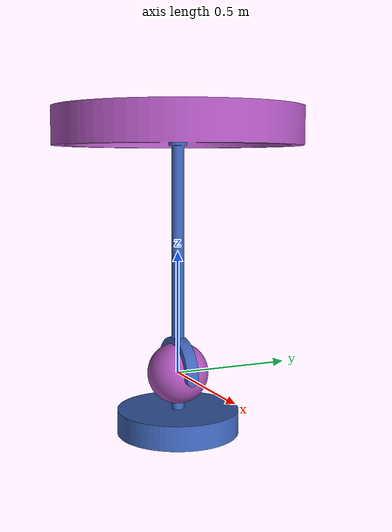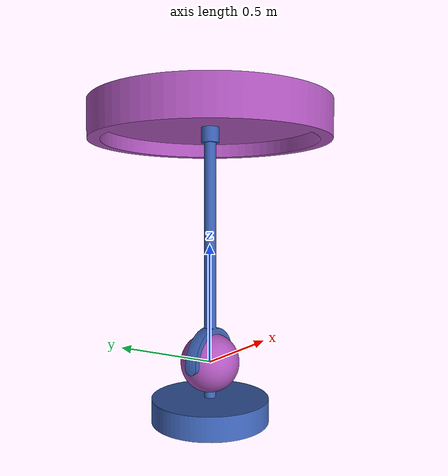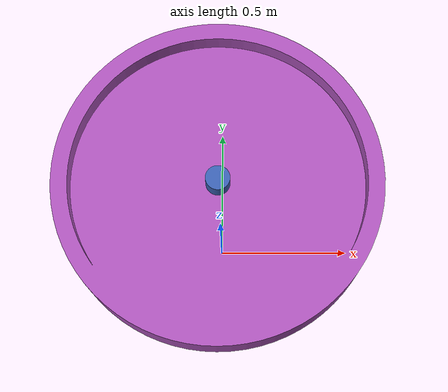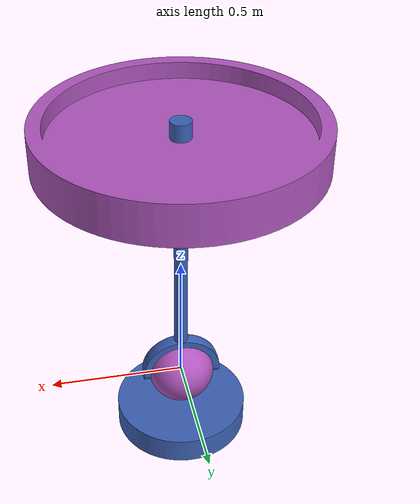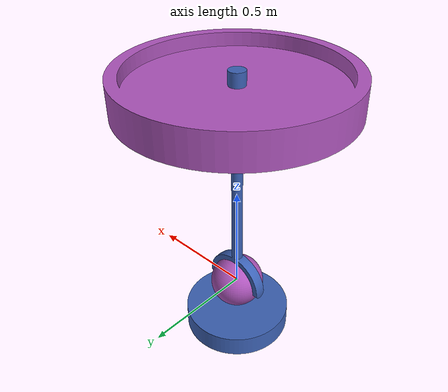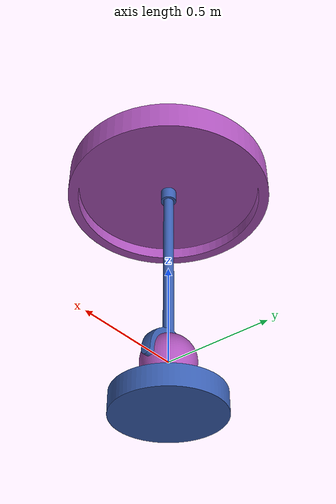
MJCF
<?xml version="1.0" ?>
<!-- Generated using onshape-to-robot -->
<!-- Onshape document_id: d9033effb682bcc1f574e56d / workspace_id: 6d5aea9da7909d1356cfc92f -->
<mujoco model="gyro">
  <compiler angle="radian" meshdir="assets" autolimits="true"/>
  <default>
    <default class="gyro">
      <joint frictionloss="0.1" armature="0.005"/>
      <position kp="50" dampratio="1"/>
      <default class="visual">
        <geom type="mesh" contype="0" conaffinity="0" group="2"/>
      </default>
      <default class="collision">
        <geom group="3"/>
      </default>
    </default>
  </default>
  <worldbody>
    <!-- Link base -->
    <body name="base" pos="0 0 0" quat="1 0 0 0" childclass="gyro">
      <inertial pos="-7.24788e-18 5.97777e-18 -0.197813" mass="1.99622e-05" fullinertia="3.29703e-07 3.29703e-07 6.13693e-07 0 0 0"/>
      <!-- Part base -->
      <geom type="mesh" class="visual" pos="0 0 0" quat="1 0 0 0" mesh="base" material="base_material"/>
      <geom type="mesh" class="collision" pos="0 0 0" quat="1 0 0 0" mesh="base" material="base_material"/>
      <!-- Link link0 -->
      <body name="link0" pos="0 0 0" quat="1 0 0 0">
        <!-- Joint from base to link0 -->
        <joint axis="0 0 1" name="joint0" type="hinge"/>
        <inertial pos="7.47112e-10 -2.75698e-08 0.001885" mass="7.81231e-06" fullinertia="4.97901e-08 4.86328e-08 4.98632e-08 0 5.86124e-16 -3.45582e-16"/>
        <!-- Part link0 -->
        <geom type="mesh" class="visual" pos="0 0 0" quat="1 0 0 0" mesh="link0" material="link0_material"/>
        <geom type="mesh" class="collision" pos="0 0 0" quat="1 0 0 0" mesh="link0" material="link0_material"/>
        <!-- Link link1 -->
        <body name="link1" pos="0 0 0" quat="0.5 0.5 0.5 0.5">
          <!-- Joint from link0 to link1 -->
          <joint axis="0 0 1" name="joint1" type="hinge"/>
          <inertial pos="-4.0726e-18 0.523056 -5.0042e-16" mass="2.79873e-06" fullinertia="3.64846e-07 8.2054e-09 3.57785e-07 7.31261e-29 -2.963e-13 -8.62753e-23"/>
          <!-- Part link1 -->
          <geom type="mesh" class="visual" pos="0 0 0" quat="0.5 -0.5 -0.5 -0.5" mesh="link1" material="link1_material"/>
          <geom type="mesh" class="collision" pos="0 0 0" quat="0.5 -0.5 -0.5 -0.5" mesh="link1" material="link1_material"/>
          <!-- Link link2 -->
          <body name="link2" pos="3.36742e-32 1 2.46798e-16" quat="0.5 -0.5 -0.5 -0.5">
            <!-- Joint from link1 to link2 -->
            <joint axis="0 0 1" name="joint2" type="hinge"/>
            <inertial pos="-3.34838e-17 -2.77862e-17 -1.11022e-16" mass="433.975" fullinertia="38.3609 38.3609 75.7505 -2.84811e-14 -7.71217e-16 -1.57499e-15"/>
            <!-- Part link2 -->
            <geom type="mesh" class="visual" pos="0 0 -1" quat="1 0 0 0" mesh="link2" material="link2_material"/>
            <geom type="mesh" class="collision" pos="0 0 -1" quat="1 0 0 0" mesh="link2" material="link2_material"/>
          </body>
        </body>
      </body>
    </body>
  </worldbody>
  <asset>
    <mesh file="link0.stl"/>
    <mesh file="base.stl"/>
    <mesh file="link2.stl"/>
    <mesh file="link1.stl"/>
    <material name="base_material" rgba="0.231373 0.380392 0.705882 1"/>
    <material name="link0_material" rgba="0.682353 0.333333 0.737255 1"/>
    <material name="link1_material" rgba="0.231373 0.380392 0.705882 1"/>
    <material name="link2_material" rgba="0.682353 0.333333 0.737255 1"/>
  </asset>
  <actuator>
    <position class="gyro" name="joint0" joint="joint0"/>
    <position class="gyro" name="joint1" joint="joint1"/>
    <position class="gyro" name="joint2" joint="joint2"/>
  </actuator>
  <equality/>
</mujoco>
